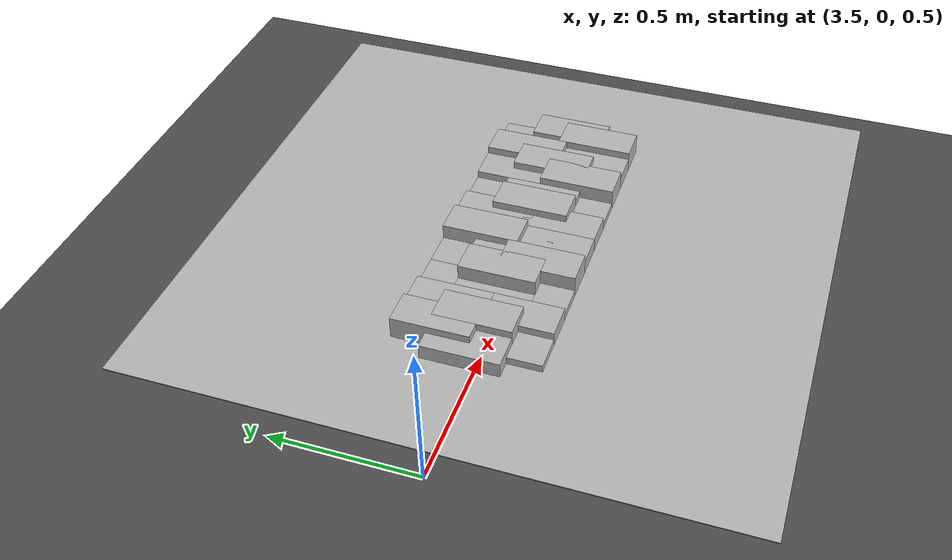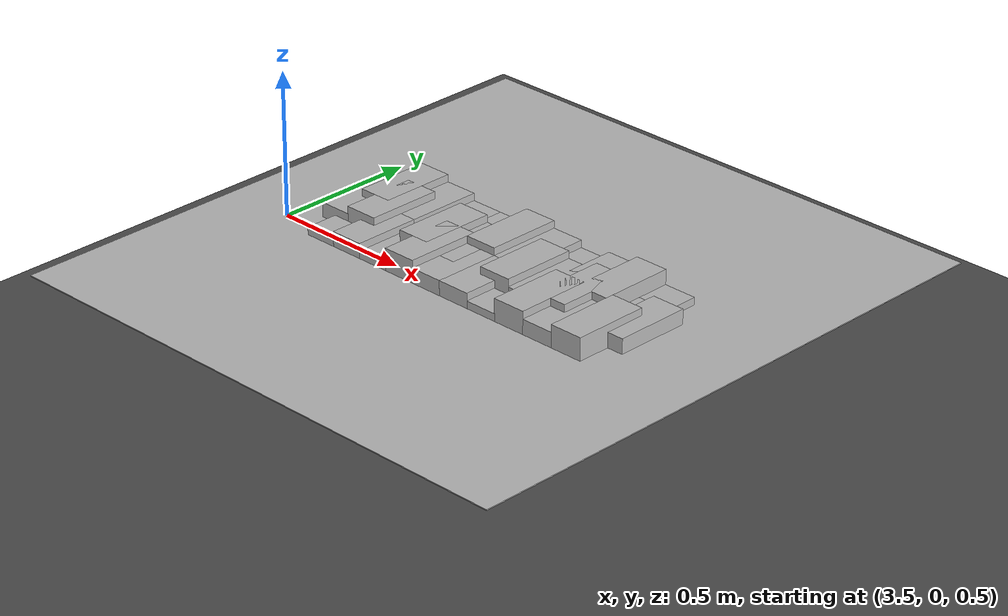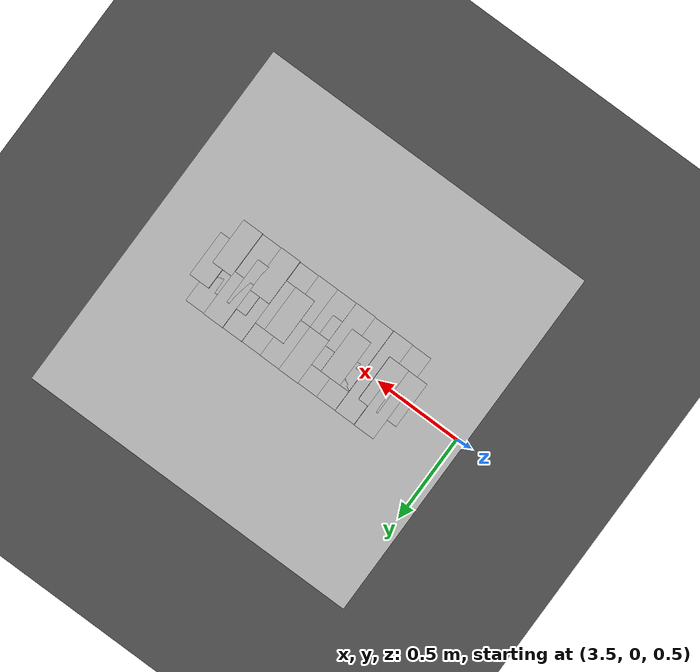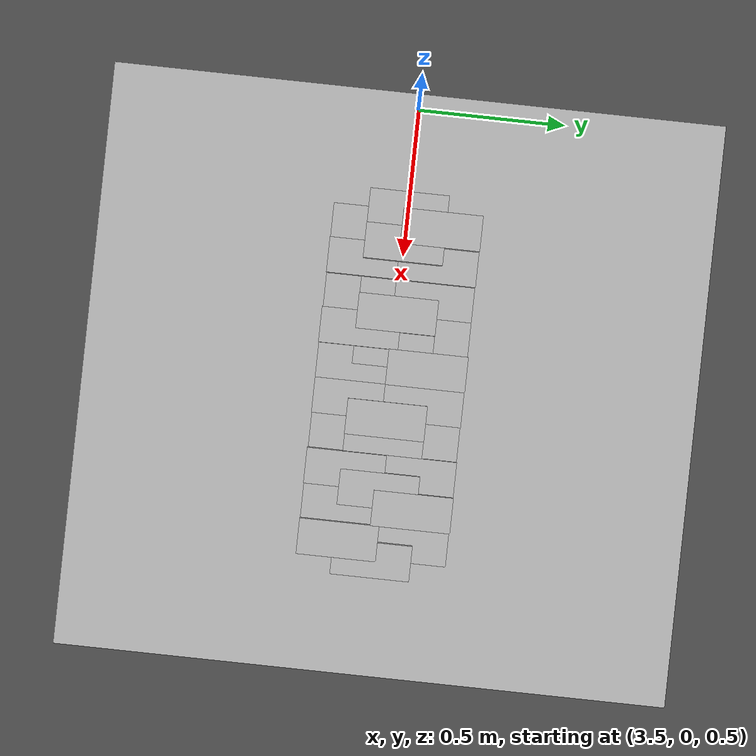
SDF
<sdf version="1.6">
 <world name="default">
  <model name="ground_plane">
   <static>1</static>
   <link name="link">
    <collision name="collision">
     <geometry><plane><normal>0 0 1</normal><size>100 100</size></plane></geometry>
     <surface><friction><ode><mu>100</mu><mu2>50</mu2></ode></friction></surface>
    </collision>
    <visual name="visual">
     <cast_shadows>0</cast_shadows>
     <geometry><plane><normal>0 0 1</normal><size>100 100</size></plane></geometry>
     <material>
      <script><uri>file://media/materials/scripts/gazebo.material</uri><name>Gazebo/Grey</name></script>
     </material>
    </visual>
   </link>
  </model>
  <model name="frc2016_roughterrain_0">
   <link name="link_clone_14">
    <pose>4.53913 -0.027351 -0.073164 0 -0 0</pose>
    <inertial>
     <inertia><ixx>nan</ixx><ixy>0</ixy><ixz>0</ixz><iyy>nan</iyy><iyz>0</iyz><izz>nan</izz></inertia>
     <mass>0</mass>
    </inertial>
    <visual name="row1_block2_lg">
     <pose>0.40005 0.1143 0.12238 0 -0 0</pose>
     <geometry><box><size>0.115452 0.257474 0.0762</size></box></geometry>
     <material><shader type="pixel"/></material>
    </visual>
    <visual name="row1_block5_md">
     <pose>0.05715 0.1143 0.10968 0 -0 0</pose>
     <geometry><box><size>0.115452 0.257474 0.0508</size></box></geometry>
     <material><shader type="pixel"/></material>
    </visual>
    <visual name="platform">
     <pose>0 0 0.08269 0 -0 0</pose>
     <geometry><box><size>1.91826 2.01688 0.003175</size></box></geometry>
     <material><shader type="pixel"/></material>
    </visual>
    <visual name="row1_block1_sm">
     <pose>0.51435 0.1143 0.09698 0 -0 0</pose>
     <geometry><box><size>0.115452 0.257474 0.0254</size></box></geometry>
     <material><shader type="pixel"/></material>
    </visual>
    <visual name="row1_block4_sm">
     <pose>0.17145 0.1143 0.09698 0 -0 0</pose>
     <geometry><box><size>0.115452 0.257474 0.0254</size></box></geometry>
     <material><shader type="pixel"/></material>
    </visual>
    <visual name="row1_block3_md">
     <pose>0.28575 0.1143 0.10968 0 -0 0</pose>
     <geometry><box><size>0.115452 0.257474 0.0508</size></box></geometry>
     <material><shader type="pixel"/></material>
    </visual>
    <visual name="row1_block6_lg">
     <pose>-0.05715 0.1143 0.12238 0 -0 0</pose>
     <geometry><box><size>0.115452 0.257474 0.0762</size></box></geometry>
     <material><shader type="pixel"/></material>
    </visual>
    <visual name="row1_block8_sm">
     <pose>-0.28575 0.1143 0.09698 0 -0 0</pose>
     <geometry><box><size>0.115452 0.257474 0.0254</size></box></geometry>
     <material><shader type="pixel"/></material>
    </visual>
    <visual name="row1_block7_sm">
     <pose>-0.17145 0.1143 0.09698 0 -0 0</pose>
     <geometry><box><size>0.115452 0.257474 0.0254</size></box></geometry>
     <material><shader type="pixel"/></material>
    </visual>
    <visual name="row1_block9_md">
     <pose>-0.40005 0.1143 0.10968 0 -0 0</pose>
     <geometry><box><size>0.115452 0.257474 0.0508</size></box></geometry>
     <material><shader type="pixel"/></material>
    </visual>
    <visual name="row1_block10_lg">
     <pose>-0.51435 0.1143 0.12238 0 -0 0</pose>
     <geometry><box><size>0.115452 0.257474 0.0762</size></box></geometry>
     <material><shader type="pixel"/></material>
    </visual>
    <visual name="row2_block1_md">
     <pose>0.5715 0 0.10968 0 -0 0</pose>
     <geometry><box><size>0.115452 0.257474 0.0508</size></box></geometry>
     <material><shader type="pixel"/></material>
    </visual>
    <visual name="row2_block2_sm">
     <pose>0.4572 0 0.09698 0 -0 0</pose>
     <geometry><box><size>0.115452 0.257474 0.0254</size></box></geometry>
     <material><shader type="pixel"/></material>
    </visual>
    <visual name="row2_block3_lg">
     <pose>0.3429 0 0.12238 0 -0 0</pose>
     <geometry><box><size>0.115452 0.257474 0.0762</size></box></geometry>
     <material><shader type="pixel"/></material>
    </visual>
    <visual name="row2_block4_md">
     <pose>0.2286 0 0.10968 0 -0 0</pose>
     <geometry><box><size>0.115452 0.257474 0.0508</size></box></geometry>
     <material><shader type="pixel"/></material>
    </visual>
    <visual name="row2_block5_lg">
     <pose>0.1143 0 0.12238 0 -0 0</pose>
     <geometry><box><size>0.115452 0.257474 0.0762</size></box></geometry>
     <material><shader type="pixel"/></material>
    </visual>
    <visual name="row2_block6_sm">
     <pose>0 0 0.09698 0 -0 0</pose>
     <geometry><box><size>0.115452 0.257474 0.0254</size></box></geometry>
     <material><shader type="pixel"/></material>
    </visual>
    <visual name="row2_block7_md">
     <pose>-0.1143 0 0.10968 0 -0 0</pose>
     <geometry><box><size>0.115452 0.257474 0.0508</size></box></geometry>
     <material><shader type="pixel"/></material>
    </visual>
    <visual name="row2_block8_lg">
     <pose>-0.2286 0 0.12238 0 -0 0</pose>
     <geometry><box><size>0.115452 0.257474 0.0762</size></box></geometry>
     <material><shader type="pixel"/></material>
    </visual>
    <visual name="row2_block9_sm">
     <pose>-0.3429 0 0.09698 0 -0 0</pose>
     <geometry><box><size>0.115452 0.257474 0.0254</size></box></geometry>
     <material><shader type="pixel"/></material>
    </visual>
    <visual name="row2_block10_lg">
     <pose>-0.4572 0 0.12238 0 -0 0</pose>
     <geometry><box><size>0.115452 0.257474 0.0762</size></box></geometry>
     <material><shader type="pixel"/></material>
    </visual>
    <visual name="row2_block11_md">
     <pose>-0.5715 0 0.10968 0 -0 0</pose>
     <geometry><box><size>0.115452 0.257474 0.0508</size></box></geometry>
     <material><shader type="pixel"/></material>
    </visual>
    <visual name="row3_block2_md">
     <pose>0.40005 -0.1143 0.10968 0 -0 0</pose>
     <geometry><box><size>0.115452 0.257474 0.0508</size></box></geometry>
     <material><shader type="pixel"/></material>
    </visual>
    <visual name="row3_block1_lg">
     <pose>0.51435 -0.1143 0.12238 0 -0 0</pose>
     <geometry><box><size>0.115452 0.257474 0.0762</size></box></geometry>
     <material><shader type="pixel"/></material>
    </visual>
    <visual name="row3_block3_lg">
     <pose>0.28575 -0.1143 0.12238 0 -0 0</pose>
     <geometry><box><size>0.115452 0.257474 0.0762</size></box></geometry>
     <material><shader type="pixel"/></material>
    </visual>
    <visual name="row3_block4_sm">
     <pose>0.17145 -0.1143 0.09698 0 -0 0</pose>
     <geometry><box><size>0.115452 0.257474 0.0254</size></box></geometry>
     <material><shader type="pixel"/></material>
    </visual>
    <visual name="row3_block5_md">
     <pose>0.05715 -0.1143 0.10968 0 -0 0</pose>
     <geometry><box><size>0.115452 0.257474 0.0508</size></box></geometry>
     <material><shader type="pixel"/></material>
    </visual>
    <visual name="row3_block6_md">
     <pose>-0.05715 -0.1143 0.10968 0 -0 0</pose>
     <geometry><box><size>0.115452 0.257474 0.0508</size></box></geometry>
     <material><shader type="pixel"/></material>
    </visual>
    <visual name="row3_block8_sm">
     <pose>-0.28575 -0.1143 0.09698 0 -0 0</pose>
     <geometry><box><size>0.115452 0.257474 0.0254</size></box></geometry>
     <material><shader type="pixel"/></material>
    </visual>
    <visual name="row3_block7_lg">
     <pose>-0.17145 -0.1143 0.12238 0 -0 0</pose>
     <geometry><box><size>0.115452 0.257474 0.0762</size></box></geometry>
     <material><shader type="pixel"/></material>
    </visual>
    <visual name="row3_block9_md">
     <pose>-0.40005 -0.1143 0.10968 0 -0 0</pose>
     <geometry><box><size>0.115452 0.257474 0.0508</size></box></geometry>
     <material><shader type="pixel"/></material>
    </visual>
    <visual name="row3_block10_sm">
     <pose>-0.51435 -0.1143 0.09698 0 -0 0</pose>
     <geometry><box><size>0.115452 0.257474 0.0254</size></box></geometry>
     <material><shader type="pixel"/></material>
    </visual>
    <collision name="row2_block5_lg_0">
     <pose>0.1143 0 0.12238 0 -0 0</pose>
     <geometry><box><size>0.115452 0.257474 0.0762</size></box></geometry>
     <surface>
      <friction>
       <ode><mu>1</mu><mu2>1</mu2><fdir1>0 0 0</fdir1><slip1>0</slip1><slip2>0</slip2></ode>
       <torsional>
        <coefficient>1</coefficient>
        <patch_radius>0</patch_radius>
        <surface_radius>0</surface_radius>
        <use_patch_radius>1</use_patch_radius>
        <ode><slip>0</slip></ode>
       </torsional>
      </friction>
      <bounce><restitution_coefficient>0</restitution_coefficient><threshold>1e+06</threshold></bounce>
      <contact>
       <collide_without_contact>0</collide_without_contact>
       <collide_without_contact_bitmask>1</collide_without_contact_bitmask>
       <collide_bitmask>1</collide_bitmask>
       <ode>
        <soft_cfm>0</soft_cfm>
        <soft_erp>0.2</soft_erp>
        <kp>1e+13</kp>
        <kd>1</kd>
        <max_vel>0.01</max_vel>
        <min_depth>0</min_depth>
       </ode>
       <bullet>
        <split_impulse>1</split_impulse>
        <split_impulse_penetration_threshold>-0.01</split_impulse_penetration_threshold>
        <soft_cfm>0</soft_cfm>
        <soft_erp>0.2</soft_erp>
        <kp>1e+13</kp>
        <kd>1</kd>
       </bullet>
      </contact>
     </surface>
    </collision>
    <collision name="platform_0">
     <pose>0 0 0.08269 0 -0 0</pose>
     <geometry><box><size>1.91826 2.01688 0.003175</size></box></geometry>
     <surface>
      <friction>
       <ode><mu>1</mu><mu2>1</mu2><fdir1>0 0 0</fdir1><slip1>0</slip1><slip2>0</slip2></ode>
       <torsional>
        <coefficient>1</coefficient>
        <patch_radius>0</patch_radius>
        <surface_radius>0</surface_radius>
        <use_patch_radius>1</use_patch_radius>
        <ode><slip>0</slip></ode>
       </torsional>
      </friction>
      <bounce><restitution_coefficient>0</restitution_coefficient><threshold>1e+06</threshold></bounce>
      <contact>
       <collide_without_contact>0</collide_without_contact>
       <collide_without_contact_bitmask>1</collide_without_contact_bitmask>
       <collide_bitmask>1</collide_bitmask>
       <ode>
        <soft_cfm>0</soft_cfm>
        <soft_erp>0.2</soft_erp>
        <kp>1e+13</kp>
        <kd>1</kd>
        <max_vel>0.01</max_vel>
        <min_depth>0</min_depth>
       </ode>
       <bullet>
        <split_impulse>1</split_impulse>
        <split_impulse_penetration_threshold>-0.01</split_impulse_penetration_threshold>
        <soft_cfm>0</soft_cfm>
        <soft_erp>0.2</soft_erp>
        <kp>1e+13</kp>
        <kd>1</kd>
       </bullet>
      </contact>
     </surface>
    </collision>
    <collision name="row1_block1_sm_0">
     <pose>0.51435 0.1143 0.09698 0 -0 0</pose>
     <geometry><box><size>0.115452 0.257474 0.0254</size></box></geometry>
     <surface>
      <friction>
       <ode><mu>1</mu><mu2>1</mu2><fdir1>0 0 0</fdir1><slip1>0</slip1><slip2>0</slip2></ode>
       <torsional>
        <coefficient>1</coefficient>
        <patch_radius>0</patch_radius>
        <surface_radius>0</surface_radius>
        <use_patch_radius>1</use_patch_radius>
        <ode><slip>0</slip></ode>
       </torsional>
      </friction>
      <bounce><restitution_coefficient>0</restitution_coefficient><threshold>1e+06</threshold></bounce>
      <contact>
       <collide_without_contact>0</collide_without_contact>
       <collide_without_contact_bitmask>1</collide_without_contact_bitmask>
       <collide_bitmask>1</collide_bitmask>
       <ode>
        <soft_cfm>0</soft_cfm>
        <soft_erp>0.2</soft_erp>
        <kp>1e+13</kp>
        <kd>1</kd>
        <max_vel>0.01</max_vel>
        <min_depth>0</min_depth>
       </ode>
       <bullet>
        <split_impulse>1</split_impulse>
        <split_impulse_penetration_threshold>-0.01</split_impulse_penetration_threshold>
        <soft_cfm>0</soft_cfm>
        <soft_erp>0.2</soft_erp>
        <kp>1e+13</kp>
        <kd>1</kd>
       </bullet>
      </contact>
     </surface>
    </collision>
    <collision name="row1_block3_md_0">
     <pose>0.28575 0.1143 0.10968 0 -0 0</pose>
     <geometry><box><size>0.115452 0.257474 0.0508</size></box></geometry>
     <surface>
      <friction>
       <ode><mu>1</mu><mu2>1</mu2><fdir1>0 0 0</fdir1><slip1>0</slip1><slip2>0</slip2></ode>
       <torsional>
        <coefficient>1</coefficient>
        <patch_radius>0</patch_radius>
        <surface_radius>0</surface_radius>
        <use_patch_radius>1</use_patch_radius>
        <ode><slip>0</slip></ode>
       </torsional>
      </friction>
      <bounce><restitution_coefficient>0</restitution_coefficient><threshold>1e+06</threshold></bounce>
      <contact>
       <collide_without_contact>0</collide_without_contact>
       <collide_without_contact_bitmask>1</collide_without_contact_bitmask>
       <collide_bitmask>1</collide_bitmask>
       <ode>
        <soft_cfm>0</soft_cfm>
        <soft_erp>0.2</soft_erp>
        <kp>1e+13</kp>
        <kd>1</kd>
        <max_vel>0.01</max_vel>
        <min_depth>0</min_depth>
       </ode>
       <bullet>
        <split_impulse>1</split_impulse>
        <split_impulse_penetration_threshold>-0.01</split_impulse_penetration_threshold>
        <soft_cfm>0</soft_cfm>
        <soft_erp>0.2</soft_erp>
        <kp>1e+13</kp>
        <kd>1</kd>
       </bullet>
      </contact>
     </surface>
    </collision>
    <collision name="row1_block2_lg_0">
     <pose>0.40005 0.1143 0.12238 0 -0 0</pose>
     <geometry><box><size>0.115452 0.257474 0.0762</size></box></geometry>
     <surface>
      <friction>
       <ode><mu>1</mu><mu2>1</mu2><fdir1>0 0 0</fdir1><slip1>0</slip1><slip2>0</slip2></ode>
       <torsional>
        <coefficient>1</coefficient>
        <patch_radius>0</patch_radius>
        <surface_radius>0</surface_radius>
        <use_patch_radius>1</use_patch_radius>
        <ode><slip>0</slip></ode>
       </torsional>
      </friction>
      <bounce><restitution_coefficient>0</restitution_coefficient><threshold>1e+06</threshold></bounce>
      <contact>
       <collide_without_contact>0</collide_without_contact>
       <collide_without_contact_bitmask>1</collide_without_contact_bitmask>
       <collide_bitmask>1</collide_bitmask>
       <ode>
        <soft_cfm>0</soft_cfm>
        <soft_erp>0.2</soft_erp>
        <kp>1e+13</kp>
        <kd>1</kd>
        <max_vel>0.01</max_vel>
        <min_depth>0</min_depth>
       </ode>
       <bullet>
        <split_impulse>1</split_impulse>
        <split_impulse_penetration_threshold>-0.01</split_impulse_penetration_threshold>
        <soft_cfm>0</soft_cfm>
        <soft_erp>0.2</soft_erp>
        <kp>1e+13</kp>
        <kd>1</kd>
       </bullet>
      </contact>
     </surface>
    </collision>
    <collision name="row1_block5_md_0">
     <pose>0.05715 0.1143 0.10968 0 -0 0</pose>
     <geometry><box><size>0.115452 0.257474 0.0508</size></box></geometry>
     <surface>
      <friction>
       <ode><mu>1</mu><mu2>1</mu2><fdir1>0 0 0</fdir1><slip1>0</slip1><slip2>0</slip2></ode>
       <torsional>
        <coefficient>1</coefficient>
        <patch_radius>0</patch_radius>
        <surface_radius>0</surface_radius>
        <use_patch_radius>1</use_patch_radius>
        <ode><slip>0</slip></ode>
       </torsional>
      </friction>
      <bounce><restitution_coefficient>0</restitution_coefficient><threshold>1e+06</threshold></bounce>
      <contact>
       <collide_without_contact>0</collide_without_contact>
       <collide_without_contact_bitmask>1</collide_without_contact_bitmask>
       <collide_bitmask>1</collide_bitmask>
       <ode>
        <soft_cfm>0</soft_cfm>
        <soft_erp>0.2</soft_erp>
        <kp>1e+13</kp>
        <kd>1</kd>
        <max_vel>0.01</max_vel>
        <min_depth>0</min_depth>
       </ode>
       <bullet>
        <split_impulse>1</split_impulse>
        <split_impulse_penetration_threshold>-0.01</split_impulse_penetration_threshold>
        <soft_cfm>0</soft_cfm>
        <soft_erp>0.2</soft_erp>
        <kp>1e+13</kp>
        <kd>1</kd>
       </bullet>
      </contact>
     </surface>
    </collision>
    <collision name="row1_block4_sm_0">
     <pose>0.17145 0.1143 0.09698 0 -0 0</pose>
     <geometry><box><size>0.115452 0.257474 0.0254</size></box></geometry>
     <surface>
      <friction>
       <ode><mu>1</mu><mu2>1</mu2><fdir1>0 0 0</fdir1><slip1>0</slip1><slip2>0</slip2></ode>
       <torsional>
        <coefficient>1</coefficient>
        <patch_radius>0</patch_radius>
        <surface_radius>0</surface_radius>
        <use_patch_radius>1</use_patch_radius>
        <ode><slip>0</slip></ode>
       </torsional>
      </friction>
      <bounce><restitution_coefficient>0</restitution_coefficient><threshold>1e+06</threshold></bounce>
      <contact>
       <collide_without_contact>0</collide_without_contact>
       <collide_without_contact_bitmask>1</collide_without_contact_bitmask>
       <collide_bitmask>1</collide_bitmask>
       <ode>
        <soft_cfm>0</soft_cfm>
        <soft_erp>0.2</soft_erp>
        <kp>1e+13</kp>
        <kd>1</kd>
        <max_vel>0.01</max_vel>
        <min_depth>0</min_depth>
       </ode>
       <bullet>
        <split_impulse>1</split_impulse>
        <split_impulse_penetration_threshold>-0.01</split_impulse_penetration_threshold>
        <soft_cfm>0</soft_cfm>
        <soft_erp>0.2</soft_erp>
        <kp>1e+13</kp>
        <kd>1</kd>
       </bullet>
      </contact>
     </surface>
    </collision>
    <collision name="row1_block6_lg_0">
     <pose>-0.05715 0.1143 0.12238 0 -0 0</pose>
     <geometry><box><size>0.115452 0.257474 0.0762</size></box></geometry>
     <surface>
      <friction>
       <ode><mu>1</mu><mu2>1</mu2><fdir1>0 0 0</fdir1><slip1>0</slip1><slip2>0</slip2></ode>
       <torsional>
        <coefficient>1</coefficient>
        <patch_radius>0</patch_radius>
        <surface_radius>0</surface_radius>
        <use_patch_radius>1</use_patch_radius>
        <ode><slip>0</slip></ode>
       </torsional>
      </friction>
      <bounce><restitution_coefficient>0</restitution_coefficient><threshold>1e+06</threshold></bounce>
      <contact>
       <collide_without_contact>0</collide_without_contact>
       <collide_without_contact_bitmask>1</collide_without_contact_bitmask>
       <collide_bitmask>1</collide_bitmask>
       <ode>
        <soft_cfm>0</soft_cfm>
        <soft_erp>0.2</soft_erp>
        <kp>1e+13</kp>
        <kd>1</kd>
        <max_vel>0.01</max_vel>
        <min_depth>0</min_depth>
       </ode>
       <bullet>
        <split_impulse>1</split_impulse>
        <split_impulse_penetration_threshold>-0.01</split_impulse_penetration_threshold>
        <soft_cfm>0</soft_cfm>
        <soft_erp>0.2</soft_erp>
        <kp>1e+13</kp>
        <kd>1</kd>
       </bullet>
      </contact>
     </surface>
    </collision>
    <collision name="row1_block10_lg_0">
     <pose>-0.51435 0.1143 0.12238 0 -0 0</pose>
     <geometry><box><size>0.115452 0.257474 0.0762</size></box></geometry>
     <surface>
      <friction>
       <ode><mu>1</mu><mu2>1</mu2><fdir1>0 0 0</fdir1><slip1>0</slip1><slip2>0</slip2></ode>
       <torsional>
        <coefficient>1</coefficient>
        <patch_radius>0</patch_radius>
        <surface_radius>0</surface_radius>
        <use_patch_radius>1</use_patch_radius>
        <ode><slip>0</slip></ode>
       </torsional>
      </friction>
      <bounce><restitution_coefficient>0</restitution_coefficient><threshold>1e+06</threshold></bounce>
      <contact>
       <collide_without_contact>0</collide_without_contact>
       <collide_without_contact_bitmask>1</collide_without_contact_bitmask>
       <collide_bitmask>1</collide_bitmask>
       <ode>
        <soft_cfm>0</soft_cfm>
        <soft_erp>0.2</soft_erp>
        <kp>1e+13</kp>
        <kd>1</kd>
        <max_vel>0.01</max_vel>
        <min_depth>0</min_depth>
       </ode>
       <bullet>
        <split_impulse>1</split_impulse>
        <split_impulse_penetration_threshold>-0.01</split_impulse_penetration_threshold>
        <soft_cfm>0</soft_cfm>
        <soft_erp>0.2</soft_erp>
        <kp>1e+13</kp>
        <kd>1</kd>
       </bullet>
      </contact>
     </surface>
    </collision>
    <collision name="row1_block7_sm_0">
     <pose>-0.17145 0.1143 0.09698 0 -0 0</pose>
     <geometry><box><size>0.115452 0.257474 0.0254</size></box></geometry>
     <surface>
      <friction>
       <ode><mu>1</mu><mu2>1</mu2><fdir1>0 0 0</fdir1><slip1>0</slip1><slip2>0</slip2></ode>
       <torsional>
        <coefficient>1</coefficient>
        <patch_radius>0</patch_radius>
        <surface_radius>0</surface_radius>
        <use_patch_radius>1</use_patch_radius>
        <ode><slip>0</slip></ode>
       </torsional>
      </friction>
      <bounce><restitution_coefficient>0</restitution_coefficient><threshold>1e+06</threshold></bounce>
      <contact>
       <collide_without_contact>0</collide_without_contact>
       <collide_without_contact_bitmask>1</collide_without_contact_bitmask>
       <collide_bitmask>1</collide_bitmask>
       <ode>
        <soft_cfm>0</soft_cfm>
        <soft_erp>0.2</soft_erp>
        <kp>1e+13</kp>
        <kd>1</kd>
        <max_vel>0.01</max_vel>
        <min_depth>0</min_depth>
       </ode>
       <bullet>
        <split_impulse>1</split_impulse>
        <split_impulse_penetration_threshold>-0.01</split_impulse_penetration_threshold>
        <soft_cfm>0</soft_cfm>
        <soft_erp>0.2</soft_erp>
        <kp>1e+13</kp>
        <kd>1</kd>
       </bullet>
      </contact>
     </surface>
    </collision>
    <collision name="row1_block8_sm_0">
     <pose>-0.28575 0.1143 0.09698 0 -0 0</pose>
     <geometry><box><size>0.115452 0.257474 0.0254</size></box></geometry>
     <surface>
      <friction>
       <ode><mu>1</mu><mu2>1</mu2><fdir1>0 0 0</fdir1><slip1>0</slip1><slip2>0</slip2></ode>
       <torsional>
        <coefficient>1</coefficient>
        <patch_radius>0</patch_radius>
        <surface_radius>0</surface_radius>
        <use_patch_radius>1</use_patch_radius>
        <ode><slip>0</slip></ode>
       </torsional>
      </friction>
      <bounce><restitution_coefficient>0</restitution_coefficient><threshold>1e+06</threshold></bounce>
      <contact>
       <collide_without_contact>0</collide_without_contact>
       <collide_without_contact_bitmask>1</collide_without_contact_bitmask>
       <collide_bitmask>1</collide_bitmask>
       <ode>
        <soft_cfm>0</soft_cfm>
        <soft_erp>0.2</soft_erp>
        <kp>1e+13</kp>
        <kd>1</kd>
        <max_vel>0.01</max_vel>
        <min_depth>0</min_depth>
       </ode>
       <bullet>
        <split_impulse>1</split_impulse>
        <split_impulse_penetration_threshold>-0.01</split_impulse_penetration_threshold>
        <soft_cfm>0</soft_cfm>
        <soft_erp>0.2</soft_erp>
        <kp>1e+13</kp>
        <kd>1</kd>
       </bullet>
      </contact>
     </surface>
    </collision>
    <collision name="row1_block9_md_0">
     <pose>-0.40005 0.1143 0.10968 0 -0 0</pose>
     <geometry><box><size>0.115452 0.257474 0.0508</size></box></geometry>
     <surface>
      <friction>
       <ode><mu>1</mu><mu2>1</mu2><fdir1>0 0 0</fdir1><slip1>0</slip1><slip2>0</slip2></ode>
       <torsional>
        <coefficient>1</coefficient>
        <patch_radius>0</patch_radius>
        <surface_radius>0</surface_radius>
        <use_patch_radius>1</use_patch_radius>
        <ode><slip>0</slip></ode>
       </torsional>
      </friction>
      <bounce><restitution_coefficient>0</restitution_coefficient><threshold>1e+06</threshold></bounce>
      <contact>
       <collide_without_contact>0</collide_without_contact>
       <collide_without_contact_bitmask>1</collide_without_contact_bitmask>
       <collide_bitmask>1</collide_bitmask>
       <ode>
        <soft_cfm>0</soft_cfm>
        <soft_erp>0.2</soft_erp>
        <kp>1e+13</kp>
        <kd>1</kd>
        <max_vel>0.01</max_vel>
        <min_depth>0</min_depth>
       </ode>
       <bullet>
        <split_impulse>1</split_impulse>
        <split_impulse_penetration_threshold>-0.01</split_impulse_penetration_threshold>
        <soft_cfm>0</soft_cfm>
        <soft_erp>0.2</soft_erp>
        <kp>1e+13</kp>
        <kd>1</kd>
       </bullet>
      </contact>
     </surface>
    </collision>
    <collision name="row2_block1_md_0">
     <pose>0.5715 0 0.10968 0 -0 0</pose>
     <geometry><box><size>0.115452 0.257474 0.0508</size></box></geometry>
     <surface>
      <friction>
       <ode><mu>1</mu><mu2>1</mu2><fdir1>0 0 0</fdir1><slip1>0</slip1><slip2>0</slip2></ode>
       <torsional>
        <coefficient>1</coefficient>
        <patch_radius>0</patch_radius>
        <surface_radius>0</surface_radius>
        <use_patch_radius>1</use_patch_radius>
        <ode><slip>0</slip></ode>
       </torsional>
      </friction>
      <bounce><restitution_coefficient>0</restitution_coefficient><threshold>1e+06</threshold></bounce>
      <contact>
       <collide_without_contact>0</collide_without_contact>
       <collide_without_contact_bitmask>1</collide_without_contact_bitmask>
       <collide_bitmask>1</collide_bitmask>
       <ode>
        <soft_cfm>0</soft_cfm>
        <soft_erp>0.2</soft_erp>
        <kp>1e+13</kp>
        <kd>1</kd>
        <max_vel>0.01</max_vel>
        <min_depth>0</min_depth>
       </ode>
       <bullet>
        <split_impulse>1</split_impulse>
        <split_impulse_penetration_threshold>-0.01</split_impulse_penetration_threshold>
        <soft_cfm>0</soft_cfm>
        <soft_erp>0.2</soft_erp>
        <kp>1e+13</kp>
        <kd>1</kd>
       </bullet>
      </contact>
     </surface>
    </collision>
    <collision name="row2_block2_sm_0">
     <pose>0.4572 0 0.09698 0 -0 0</pose>
     <geometry><box><size>0.115452 0.257474 0.0254</size></box></geometry>
     <surface>
      <friction>
       <ode><mu>1</mu><mu2>1</mu2><fdir1>0 0 0</fdir1><slip1>0</slip1><slip2>0</slip2></ode>
       <torsional>
        <coefficient>1</coefficient>
        <patch_radius>0</patch_radius>
        <surface_radius>0</surface_radius>
        <use_patch_radius>1</use_patch_radius>
        <ode><slip>0</slip></ode>
       </torsional>
      </friction>
      <bounce><restitution_coefficient>0</restitution_coefficient><threshold>1e+06</threshold></bounce>
      <contact>
       <collide_without_contact>0</collide_without_contact>
       <collide_without_contact_bitmask>1</collide_without_contact_bitmask>
       <collide_bitmask>1</collide_bitmask>
       <ode>
        <soft_cfm>0</soft_cfm>
        <soft_erp>0.2</soft_erp>
        <kp>1e+13</kp>
        <kd>1</kd>
        <max_vel>0.01</max_vel>
        <min_depth>0</min_depth>
       </ode>
       <bullet>
        <split_impulse>1</split_impulse>
        <split_impulse_penetration_threshold>-0.01</split_impulse_penetration_threshold>
        <soft_cfm>0</soft_cfm>
        <soft_erp>0.2</soft_erp>
        <kp>1e+13</kp>
        <kd>1</kd>
       </bullet>
      </contact>
     </surface>
    </collision>
    <collision name="row2_block4_md_0">
     <pose>0.2286 0 0.10968 0 -0 0</pose>
     <geometry><box><size>0.115452 0.257474 0.0508</size></box></geometry>
     <surface>
      <friction>
       <ode><mu>1</mu><mu2>1</mu2><fdir1>0 0 0</fdir1><slip1>0</slip1><slip2>0</slip2></ode>
       <torsional>
        <coefficient>1</coefficient>
        <patch_radius>0</patch_radius>
        <surface_radius>0</surface_radius>
        <use_patch_radius>1</use_patch_radius>
        <ode><slip>0</slip></ode>
       </torsional>
      </friction>
      <bounce><restitution_coefficient>0</restitution_coefficient><threshold>1e+06</threshold></bounce>
      <contact>
       <collide_without_contact>0</collide_without_contact>
       <collide_without_contact_bitmask>1</collide_without_contact_bitmask>
       <collide_bitmask>1</collide_bitmask>
       <ode>
        <soft_cfm>0</soft_cfm>
        <soft_erp>0.2</soft_erp>
        <kp>1e+13</kp>
        <kd>1</kd>
        <max_vel>0.01</max_vel>
        <min_depth>0</min_depth>
       </ode>
       <bullet>
        <split_impulse>1</split_impulse>
        <split_impulse_penetration_threshold>-0.01</split_impulse_penetration_threshold>
        <soft_cfm>0</soft_cfm>
        <soft_erp>0.2</soft_erp>
        <kp>1e+13</kp>
        <kd>1</kd>
       </bullet>
      </contact>
     </surface>
    </collision>
    <collision name="row2_block3_lg_0">
     <pose>0.3429 0 0.12238 0 -0 0</pose>
     <geometry><box><size>0.115452 0.257474 0.0762</size></box></geometry>
     <surface>
      <friction>
       <ode><mu>1</mu><mu2>1</mu2><fdir1>0 0 0</fdir1><slip1>0</slip1><slip2>0</slip2></ode>
       <torsional>
        <coefficient>1</coefficient>
        <patch_radius>0</patch_radius>
        <surface_radius>0</surface_radius>
        <use_patch_radius>1</use_patch_radius>
        <ode><slip>0</slip></ode>
       </torsional>
      </friction>
      <bounce><restitution_coefficient>0</restitution_coefficient><threshold>1e+06</threshold></bounce>
      <contact>
       <collide_without_contact>0</collide_without_contact>
       <collide_without_contact_bitmask>1</collide_without_contact_bitmask>
       <collide_bitmask>1</collide_bitmask>
       <ode>
        <soft_cfm>0</soft_cfm>
        <soft_erp>0.2</soft_erp>
        <kp>1e+13</kp>
        <kd>1</kd>
        <max_vel>0.01</max_vel>
        <min_depth>0</min_depth>
       </ode>
       <bullet>
        <split_impulse>1</split_impulse>
        <split_impulse_penetration_threshold>-0.01</split_impulse_penetration_threshold>
        <soft_cfm>0</soft_cfm>
        <soft_erp>0.2</soft_erp>
        <kp>1e+13</kp>
        <kd>1</kd>
       </bullet>
      </contact>
     </surface>
    </collision>
    <collision name="row2_block7_md_0">
     <pose>-0.1143 0 0.10968 0 -0 0</pose>
     <geometry><box><size>0.115452 0.257474 0.0508</size></box></geometry>
     <surface>
      <friction>
       <ode><mu>1</mu><mu2>1</mu2><fdir1>0 0 0</fdir1><slip1>0</slip1><slip2>0</slip2></ode>
       <torsional>
        <coefficient>1</coefficient>
        <patch_radius>0</patch_radius>
        <surface_radius>0</surface_radius>
        <use_patch_radius>1</use_patch_radius>
        <ode><slip>0</slip></ode>
       </torsional>
      </friction>
      <bounce><restitution_coefficient>0</restitution_coefficient><threshold>1e+06</threshold></bounce>
      <contact>
       <collide_without_contact>0</collide_without_contact>
       <collide_without_contact_bitmask>1</collide_without_contact_bitmask>
       <collide_bitmask>1</collide_bitmask>
       <ode>
        <soft_cfm>0</soft_cfm>
        <soft_erp>0.2</soft_erp>
        <kp>1e+13</kp>
        <kd>1</kd>
        <max_vel>0.01</max_vel>
        <min_depth>0</min_depth>
       </ode>
       <bullet>
        <split_impulse>1</split_impulse>
        <split_impulse_penetration_threshold>-0.01</split_impulse_penetration_threshold>
        <soft_cfm>0</soft_cfm>
        <soft_erp>0.2</soft_erp>
        <kp>1e+13</kp>
        <kd>1</kd>
       </bullet>
      </contact>
     </surface>
    </collision>
    <collision name="row2_block6_sm_0">
     <pose>0 0 0.09698 0 -0 0</pose>
     <geometry><box><size>0.115452 0.257474 0.0254</size></box></geometry>
     <surface>
      <friction>
       <ode><mu>1</mu><mu2>1</mu2><fdir1>0 0 0</fdir1><slip1>0</slip1><slip2>0</slip2></ode>
       <torsional>
        <coefficient>1</coefficient>
        <patch_radius>0</patch_radius>
        <surface_radius>0</surface_radius>
        <use_patch_radius>1</use_patch_radius>
        <ode><slip>0</slip></ode>
       </torsional>
      </friction>
      <bounce><restitution_coefficient>0</restitution_coefficient><threshold>1e+06</threshold></bounce>
      <contact>
       <collide_without_contact>0</collide_without_contact>
       <collide_without_contact_bitmask>1</collide_without_contact_bitmask>
       <collide_bitmask>1</collide_bitmask>
       <ode>
        <soft_cfm>0</soft_cfm>
        <soft_erp>0.2</soft_erp>
        <kp>1e+13</kp>
        <kd>1</kd>
        <max_vel>0.01</max_vel>
        <min_depth>0</min_depth>
       </ode>
       <bullet>
        <split_impulse>1</split_impulse>
        <split_impulse_penetration_threshold>-0.01</split_impulse_penetration_threshold>
        <soft_cfm>0</soft_cfm>
        <soft_erp>0.2</soft_erp>
        <kp>1e+13</kp>
        <kd>1</kd>
       </bullet>
      </contact>
     </surface>
    </collision>
    <collision name="row2_block10_lg_0">
     <pose>-0.4572 0 0.12238 0 -0 0</pose>
     <geometry><box><size>0.115452 0.257474 0.0762</size></box></geometry>
     <surface>
      <friction>
       <ode><mu>1</mu><mu2>1</mu2><fdir1>0 0 0</fdir1><slip1>0</slip1><slip2>0</slip2></ode>
       <torsional>
        <coefficient>1</coefficient>
        <patch_radius>0</patch_radius>
        <surface_radius>0</surface_radius>
        <use_patch_radius>1</use_patch_radius>
        <ode><slip>0</slip></ode>
       </torsional>
      </friction>
      <bounce><restitution_coefficient>0</restitution_coefficient><threshold>1e+06</threshold></bounce>
      <contact>
       <collide_without_contact>0</collide_without_contact>
       <collide_without_contact_bitmask>1</collide_without_contact_bitmask>
       <collide_bitmask>1</collide_bitmask>
       <ode>
        <soft_cfm>0</soft_cfm>
        <soft_erp>0.2</soft_erp>
        <kp>1e+13</kp>
        <kd>1</kd>
        <max_vel>0.01</max_vel>
        <min_depth>0</min_depth>
       </ode>
       <bullet>
        <split_impulse>1</split_impulse>
        <split_impulse_penetration_threshold>-0.01</split_impulse_penetration_threshold>
        <soft_cfm>0</soft_cfm>
        <soft_erp>0.2</soft_erp>
        <kp>1e+13</kp>
        <kd>1</kd>
       </bullet>
      </contact>
     </surface>
    </collision>
    <collision name="row2_block8_lg_0">
     <pose>-0.2286 0 0.12238 0 -0 0</pose>
     <geometry><box><size>0.115452 0.257474 0.0762</size></box></geometry>
     <surface>
      <friction>
       <ode><mu>1</mu><mu2>1</mu2><fdir1>0 0 0</fdir1><slip1>0</slip1><slip2>0</slip2></ode>
       <torsional>
        <coefficient>1</coefficient>
        <patch_radius>0</patch_radius>
        <surface_radius>0</surface_radius>
        <use_patch_radius>1</use_patch_radius>
        <ode><slip>0</slip></ode>
       </torsional>
      </friction>
      <bounce><restitution_coefficient>0</restitution_coefficient><threshold>1e+06</threshold></bounce>
      <contact>
       <collide_without_contact>0</collide_without_contact>
       <collide_without_contact_bitmask>1</collide_without_contact_bitmask>
       <collide_bitmask>1</collide_bitmask>
       <ode>
        <soft_cfm>0</soft_cfm>
        <soft_erp>0.2</soft_erp>
        <kp>1e+13</kp>
        <kd>1</kd>
        <max_vel>0.01</max_vel>
        <min_depth>0</min_depth>
       </ode>
       <bullet>
        <split_impulse>1</split_impulse>
        <split_impulse_penetration_threshold>-0.01</split_impulse_penetration_threshold>
        <soft_cfm>0</soft_cfm>
        <soft_erp>0.2</soft_erp>
        <kp>1e+13</kp>
        <kd>1</kd>
       </bullet>
      </contact>
     </surface>
    </collision>
    <collision name="row3_block2_md_0">
     <pose>0.40005 -0.1143 0.10968 0 -0 0</pose>
     <geometry><box><size>0.115452 0.257474 0.0508</size></box></geometry>
     <surface>
      <friction>
       <ode><mu>1</mu><mu2>1</mu2><fdir1>0 0 0</fdir1><slip1>0</slip1><slip2>0</slip2></ode>
       <torsional>
        <coefficient>1</coefficient>
        <patch_radius>0</patch_radius>
        <surface_radius>0</surface_radius>
        <use_patch_radius>1</use_patch_radius>
        <ode><slip>0</slip></ode>
       </torsional>
      </friction>
      <bounce><restitution_coefficient>0</restitution_coefficient><threshold>1e+06</threshold></bounce>
      <contact>
       <collide_without_contact>0</collide_without_contact>
       <collide_without_contact_bitmask>1</collide_without_contact_bitmask>
       <collide_bitmask>1</collide_bitmask>
       <ode>
        <soft_cfm>0</soft_cfm>
        <soft_erp>0.2</soft_erp>
        <kp>1e+13</kp>
        <kd>1</kd>
        <max_vel>0.01</max_vel>
        <min_depth>0</min_depth>
       </ode>
       <bullet>
        <split_impulse>1</split_impulse>
        <split_impulse_penetration_threshold>-0.01</split_impulse_penetration_threshold>
        <soft_cfm>0</soft_cfm>
        <soft_erp>0.2</soft_erp>
        <kp>1e+13</kp>
        <kd>1</kd>
       </bullet>
      </contact>
     </surface>
    </collision>
    <collision name="row2_block9_sm_0">
     <pose>-0.3429 0 0.09698 0 -0 0</pose>
     <geometry><box><size>0.115452 0.257474 0.0254</size></box></geometry>
     <surface>
      <friction>
       <ode><mu>1</mu><mu2>1</mu2><fdir1>0 0 0</fdir1><slip1>0</slip1><slip2>0</slip2></ode>
       <torsional>
        <coefficient>1</coefficient>
        <patch_radius>0</patch_radius>
        <surface_radius>0</surface_radius>
        <use_patch_radius>1</use_patch_radius>
        <ode><slip>0</slip></ode>
       </torsional>
      </friction>
      <bounce><restitution_coefficient>0</restitution_coefficient><threshold>1e+06</threshold></bounce>
      <contact>
       <collide_without_contact>0</collide_without_contact>
       <collide_without_contact_bitmask>1</collide_without_contact_bitmask>
       <collide_bitmask>1</collide_bitmask>
       <ode>
        <soft_cfm>0</soft_cfm>
        <soft_erp>0.2</soft_erp>
        <kp>1e+13</kp>
        <kd>1</kd>
        <max_vel>0.01</max_vel>
        <min_depth>0</min_depth>
       </ode>
       <bullet>
        <split_impulse>1</split_impulse>
        <split_impulse_penetration_threshold>-0.01</split_impulse_penetration_threshold>
        <soft_cfm>0</soft_cfm>
        <soft_erp>0.2</soft_erp>
        <kp>1e+13</kp>
        <kd>1</kd>
       </bullet>
      </contact>
     </surface>
    </collision>
    <collision name="row2_block11_md_0">
     <pose>-0.5715 0 0.10968 0 -0 0</pose>
     <geometry><box><size>0.115452 0.257474 0.0508</size></box></geometry>
     <surface>
      <friction>
       <ode><mu>1</mu><mu2>1</mu2><fdir1>0 0 0</fdir1><slip1>0</slip1><slip2>0</slip2></ode>
       <torsional>
        <coefficient>1</coefficient>
        <patch_radius>0</patch_radius>
        <surface_radius>0</surface_radius>
        <use_patch_radius>1</use_patch_radius>
        <ode><slip>0</slip></ode>
       </torsional>
      </friction>
      <bounce><restitution_coefficient>0</restitution_coefficient><threshold>1e+06</threshold></bounce>
      <contact>
       <collide_without_contact>0</collide_without_contact>
       <collide_without_contact_bitmask>1</collide_without_contact_bitmask>
       <collide_bitmask>1</collide_bitmask>
       <ode>
        <soft_cfm>0</soft_cfm>
        <soft_erp>0.2</soft_erp>
        <kp>1e+13</kp>
        <kd>1</kd>
        <max_vel>0.01</max_vel>
        <min_depth>0</min_depth>
       </ode>
       <bullet>
        <split_impulse>1</split_impulse>
        <split_impulse_penetration_threshold>-0.01</split_impulse_penetration_threshold>
        <soft_cfm>0</soft_cfm>
        <soft_erp>0.2</soft_erp>
        <kp>1e+13</kp>
        <kd>1</kd>
       </bullet>
      </contact>
     </surface>
    </collision>
    <collision name="row3_block1_lg_0">
     <pose>0.51435 -0.1143 0.12238 0 -0 0</pose>
     <geometry><box><size>0.115452 0.257474 0.0762</size></box></geometry>
     <surface>
      <friction>
       <ode><mu>1</mu><mu2>1</mu2><fdir1>0 0 0</fdir1><slip1>0</slip1><slip2>0</slip2></ode>
       <torsional>
        <coefficient>1</coefficient>
        <patch_radius>0</patch_radius>
        <surface_radius>0</surface_radius>
        <use_patch_radius>1</use_patch_radius>
        <ode><slip>0</slip></ode>
       </torsional>
      </friction>
      <bounce><restitution_coefficient>0</restitution_coefficient><threshold>1e+06</threshold></bounce>
      <contact>
       <collide_without_contact>0</collide_without_contact>
       <collide_without_contact_bitmask>1</collide_without_contact_bitmask>
       <collide_bitmask>1</collide_bitmask>
       <ode>
        <soft_cfm>0</soft_cfm>
        <soft_erp>0.2</soft_erp>
        <kp>1e+13</kp>
        <kd>1</kd>
        <max_vel>0.01</max_vel>
        <min_depth>0</min_depth>
       </ode>
       <bullet>
        <split_impulse>1</split_impulse>
        <split_impulse_penetration_threshold>-0.01</split_impulse_penetration_threshold>
        <soft_cfm>0</soft_cfm>
        <soft_erp>0.2</soft_erp>
        <kp>1e+13</kp>
        <kd>1</kd>
       </bullet>
      </contact>
     </surface>
    </collision>
    <collision name="row3_block3_lg_0">
     <pose>0.28575 -0.1143 0.12238 0 -0 0</pose>
     <geometry><box><size>0.115452 0.257474 0.0762</size></box></geometry>
     <surface>
      <friction>
       <ode><mu>1</mu><mu2>1</mu2><fdir1>0 0 0</fdir1><slip1>0</slip1><slip2>0</slip2></ode>
       <torsional>
        <coefficient>1</coefficient>
        <patch_radius>0</patch_radius>
        <surface_radius>0</surface_radius>
        <use_patch_radius>1</use_patch_radius>
        <ode><slip>0</slip></ode>
       </torsional>
      </friction>
      <bounce><restitution_coefficient>0</restitution_coefficient><threshold>1e+06</threshold></bounce>
      <contact>
       <collide_without_contact>0</collide_without_contact>
       <collide_without_contact_bitmask>1</collide_without_contact_bitmask>
       <collide_bitmask>1</collide_bitmask>
       <ode>
        <soft_cfm>0</soft_cfm>
        <soft_erp>0.2</soft_erp>
        <kp>1e+13</kp>
        <kd>1</kd>
        <max_vel>0.01</max_vel>
        <min_depth>0</min_depth>
       </ode>
       <bullet>
        <split_impulse>1</split_impulse>
        <split_impulse_penetration_threshold>-0.01</split_impulse_penetration_threshold>
        <soft_cfm>0</soft_cfm>
        <soft_erp>0.2</soft_erp>
        <kp>1e+13</kp>
        <kd>1</kd>
       </bullet>
      </contact>
     </surface>
    </collision>
    <collision name="row3_block4_sm_0">
     <pose>0.17145 -0.1143 0.09698 0 -0 0</pose>
     <geometry><box><size>0.115452 0.257474 0.0254</size></box></geometry>
     <surface>
      <friction>
       <ode><mu>1</mu><mu2>1</mu2><fdir1>0 0 0</fdir1><slip1>0</slip1><slip2>0</slip2></ode>
       <torsional>
        <coefficient>1</coefficient>
        <patch_radius>0</patch_radius>
        <surface_radius>0</surface_radius>
        <use_patch_radius>1</use_patch_radius>
        <ode><slip>0</slip></ode>
       </torsional>
      </friction>
      <bounce><restitution_coefficient>0</restitution_coefficient><threshold>1e+06</threshold></bounce>
      <contact>
       <collide_without_contact>0</collide_without_contact>
       <collide_without_contact_bitmask>1</collide_without_contact_bitmask>
       <collide_bitmask>1</collide_bitmask>
       <ode>
        <soft_cfm>0</soft_cfm>
        <soft_erp>0.2</soft_erp>
        <kp>1e+13</kp>
        <kd>1</kd>
        <max_vel>0.01</max_vel>
        <min_depth>0</min_depth>
       </ode>
       <bullet>
        <split_impulse>1</split_impulse>
        <split_impulse_penetration_threshold>-0.01</split_impulse_penetration_threshold>
        <soft_cfm>0</soft_cfm>
        <soft_erp>0.2</soft_erp>
        <kp>1e+13</kp>
        <kd>1</kd>
       </bullet>
      </contact>
     </surface>
    </collision>
    <collision name="row3_block5_md_0">
     <pose>0.05715 -0.1143 0.10968 0 -0 0</pose>
     <geometry><box><size>0.115452 0.257474 0.0508</size></box></geometry>
     <surface>
      <friction>
       <ode><mu>1</mu><mu2>1</mu2><fdir1>0 0 0</fdir1><slip1>0</slip1><slip2>0</slip2></ode>
       <torsional>
        <coefficient>1</coefficient>
        <patch_radius>0</patch_radius>
        <surface_radius>0</surface_radius>
        <use_patch_radius>1</use_patch_radius>
        <ode><slip>0</slip></ode>
       </torsional>
      </friction>
      <bounce><restitution_coefficient>0</restitution_coefficient><threshold>1e+06</threshold></bounce>
      <contact>
       <collide_without_contact>0</collide_without_contact>
       <collide_without_contact_bitmask>1</collide_without_contact_bitmask>
       <collide_bitmask>1</collide_bitmask>
       <ode>
        <soft_cfm>0</soft_cfm>
        <soft_erp>0.2</soft_erp>
        <kp>1e+13</kp>
        <kd>1</kd>
        <max_vel>0.01</max_vel>
        <min_depth>0</min_depth>
       </ode>
       <bullet>
        <split_impulse>1</split_impulse>
        <split_impulse_penetration_threshold>-0.01</split_impulse_penetration_threshold>
        <soft_cfm>0</soft_cfm>
        <soft_erp>0.2</soft_erp>
        <kp>1e+13</kp>
        <kd>1</kd>
       </bullet>
      </contact>
     </surface>
    </collision>
    <collision name="row3_block8_sm_0">
     <pose>-0.28575 -0.1143 0.09698 0 -0 0</pose>
     <geometry><box><size>0.115452 0.257474 0.0254</size></box></geometry>
     <surface>
      <friction>
       <ode><mu>1</mu><mu2>1</mu2><fdir1>0 0 0</fdir1><slip1>0</slip1><slip2>0</slip2></ode>
       <torsional>
        <coefficient>1</coefficient>
        <patch_radius>0</patch_radius>
        <surface_radius>0</surface_radius>
        <use_patch_radius>1</use_patch_radius>
        <ode><slip>0</slip></ode>
       </torsional>
      </friction>
      <bounce><restitution_coefficient>0</restitution_coefficient><threshold>1e+06</threshold></bounce>
      <contact>
       <collide_without_contact>0</collide_without_contact>
       <collide_without_contact_bitmask>1</collide_without_contact_bitmask>
       <collide_bitmask>1</collide_bitmask>
       <ode>
        <soft_cfm>0</soft_cfm>
        <soft_erp>0.2</soft_erp>
        <kp>1e+13</kp>
        <kd>1</kd>
        <max_vel>0.01</max_vel>
        <min_depth>0</min_depth>
       </ode>
       <bullet>
        <split_impulse>1</split_impulse>
        <split_impulse_penetration_threshold>-0.01</split_impulse_penetration_threshold>
        <soft_cfm>0</soft_cfm>
        <soft_erp>0.2</soft_erp>
        <kp>1e+13</kp>
        <kd>1</kd>
       </bullet>
      </contact>
     </surface>
    </collision>
    <collision name="row3_block7_lg_0">
     <pose>-0.17145 -0.1143 0.12238 0 -0 0</pose>
     <geometry><box><size>0.115452 0.257474 0.0762</size></box></geometry>
     <surface>
      <friction>
       <ode><mu>1</mu><mu2>1</mu2><fdir1>0 0 0</fdir1><slip1>0</slip1><slip2>0</slip2></ode>
       <torsional>
        <coefficient>1</coefficient>
        <patch_radius>0</patch_radius>
        <surface_radius>0</surface_radius>
        <use_patch_radius>1</use_patch_radius>
        <ode><slip>0</slip></ode>
       </torsional>
      </friction>
      <bounce><restitution_coefficient>0</restitution_coefficient><threshold>1e+06</threshold></bounce>
      <contact>
       <collide_without_contact>0</collide_without_contact>
       <collide_without_contact_bitmask>1</collide_without_contact_bitmask>
       <collide_bitmask>1</collide_bitmask>
       <ode>
        <soft_cfm>0</soft_cfm>
        <soft_erp>0.2</soft_erp>
        <kp>1e+13</kp>
        <kd>1</kd>
        <max_vel>0.01</max_vel>
        <min_depth>0</min_depth>
       </ode>
       <bullet>
        <split_impulse>1</split_impulse>
        <split_impulse_penetration_threshold>-0.01</split_impulse_penetration_threshold>
        <soft_cfm>0</soft_cfm>
        <soft_erp>0.2</soft_erp>
        <kp>1e+13</kp>
        <kd>1</kd>
       </bullet>
      </contact>
     </surface>
    </collision>
    <collision name="row3_block6_md_0">
     <pose>-0.05715 -0.1143 0.10968 0 -0 0</pose>
     <geometry><box><size>0.115452 0.257474 0.0508</size></box></geometry>
     <surface>
      <friction>
       <ode><mu>1</mu><mu2>1</mu2><fdir1>0 0 0</fdir1><slip1>0</slip1><slip2>0</slip2></ode>
       <torsional>
        <coefficient>1</coefficient>
        <patch_radius>0</patch_radius>
        <surface_radius>0</surface_radius>
        <use_patch_radius>1</use_patch_radius>
        <ode><slip>0</slip></ode>
       </torsional>
      </friction>
      <bounce><restitution_coefficient>0</restitution_coefficient><threshold>1e+06</threshold></bounce>
      <contact>
       <collide_without_contact>0</collide_without_contact>
       <collide_without_contact_bitmask>1</collide_without_contact_bitmask>
       <collide_bitmask>1</collide_bitmask>
       <ode>
        <soft_cfm>0</soft_cfm>
        <soft_erp>0.2</soft_erp>
        <kp>1e+13</kp>
        <kd>1</kd>
        <max_vel>0.01</max_vel>
        <min_depth>0</min_depth>
       </ode>
       <bullet>
        <split_impulse>1</split_impulse>
        <split_impulse_penetration_threshold>-0.01</split_impulse_penetration_threshold>
        <soft_cfm>0</soft_cfm>
        <soft_erp>0.2</soft_erp>
        <kp>1e+13</kp>
        <kd>1</kd>
       </bullet>
      </contact>
     </surface>
    </collision>
    <collision name="row3_block10_sm_0">
     <pose>-0.51435 -0.1143 0.09698 0 -0 0</pose>
     <geometry><box><size>0.115452 0.257474 0.0254</size></box></geometry>
     <surface>
      <friction>
       <ode><mu>1</mu><mu2>1</mu2><fdir1>0 0 0</fdir1><slip1>0</slip1><slip2>0</slip2></ode>
       <torsional>
        <coefficient>1</coefficient>
        <patch_radius>0</patch_radius>
        <surface_radius>0</surface_radius>
        <use_patch_radius>1</use_patch_radius>
        <ode><slip>0</slip></ode>
       </torsional>
      </friction>
      <bounce><restitution_coefficient>0</restitution_coefficient><threshold>1e+06</threshold></bounce>
      <contact>
       <collide_without_contact>0</collide_without_contact>
       <collide_without_contact_bitmask>1</collide_without_contact_bitmask>
       <collide_bitmask>1</collide_bitmask>
       <ode>
        <soft_cfm>0</soft_cfm>
        <soft_erp>0.2</soft_erp>
        <kp>1e+13</kp>
        <kd>1</kd>
        <max_vel>0.01</max_vel>
        <min_depth>0</min_depth>
       </ode>
       <bullet>
        <split_impulse>1</split_impulse>
        <split_impulse_penetration_threshold>-0.01</split_impulse_penetration_threshold>
        <soft_cfm>0</soft_cfm>
        <soft_erp>0.2</soft_erp>
        <kp>1e+13</kp>
        <kd>1</kd>
       </bullet>
      </contact>
     </surface>
    </collision>
    <collision name="row3_block9_md_0">
     <pose>-0.40005 -0.1143 0.10968 0 -0 0</pose>
     <geometry><box><size>0.115452 0.257474 0.0508</size></box></geometry>
     <surface>
      <friction>
       <ode><mu>1</mu><mu2>1</mu2><fdir1>0 0 0</fdir1><slip1>0</slip1><slip2>0</slip2></ode>
       <torsional>
        <coefficient>1</coefficient>
        <patch_radius>0</patch_radius>
        <surface_radius>0</surface_radius>
        <use_patch_radius>1</use_patch_radius>
        <ode><slip>0</slip></ode>
       </torsional>
      </friction>
      <bounce><restitution_coefficient>0</restitution_coefficient><threshold>1e+06</threshold></bounce>
      <contact>
       <collide_without_contact>0</collide_without_contact>
       <collide_without_contact_bitmask>1</collide_without_contact_bitmask>
       <collide_bitmask>1</collide_bitmask>
       <ode>
        <soft_cfm>0</soft_cfm>
        <soft_erp>0.2</soft_erp>
        <kp>1e+13</kp>
        <kd>1</kd>
        <max_vel>0.01</max_vel>
        <min_depth>0</min_depth>
       </ode>
       <bullet>
        <split_impulse>1</split_impulse>
        <split_impulse_penetration_threshold>-0.01</split_impulse_penetration_threshold>
        <soft_cfm>0</soft_cfm>
        <soft_erp>0.2</soft_erp>
        <kp>1e+13</kp>
        <kd>1</kd>
       </bullet>
      </contact>
     </surface>
    </collision>
   </link>
   <static>1</static>
   <pose>-0.10114 0.027351 0.636987 0 -0 0</pose>
  </model>
  <model name="asphalt_plane">
   <static>1</static>
   <link name="link">
    <collision name="collision"><geometry><box><size>20 20 0.1</size></box></geometry></collision>
    <visual name="visual">
     <cast_shadows>0</cast_shadows>
     <geometry><box><size>20 20 0.1</size></box></geometry>
     <material>
      <script>
       <uri>model://asphalt_plane/materials/scripts</uri>
       <uri>model://asphalt_plane/materials/textures</uri>
       <name>vrc/asphalt</name>
      </script>
     </material>
    </visual>
   </link>
   <pose>0.537328 0.29075 -0.013118 0 -0 0</pose>
  </model>
 </world>
</sdf>
